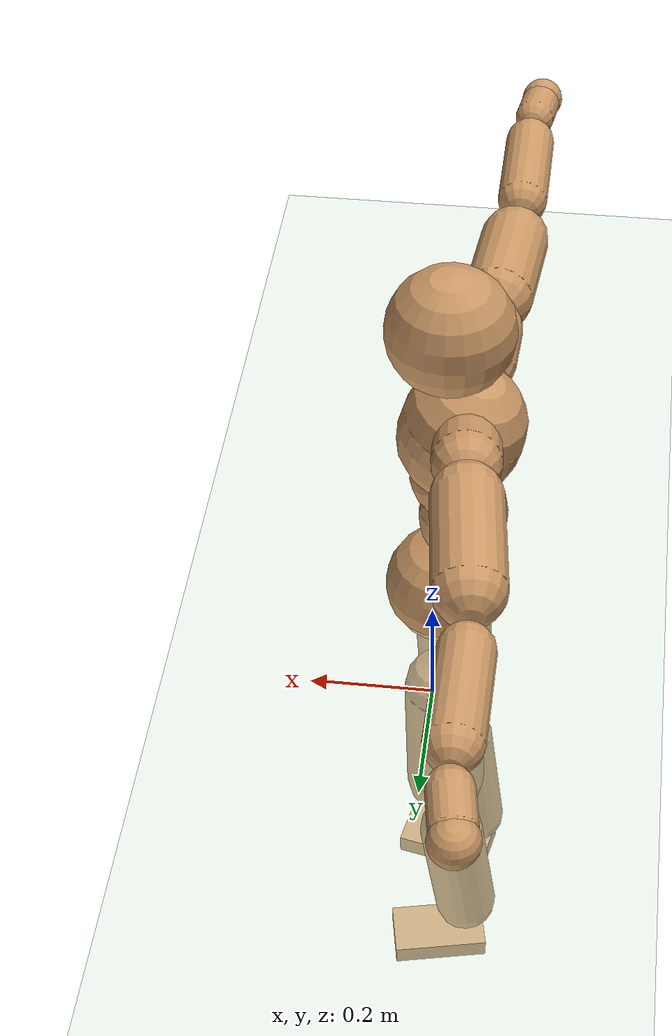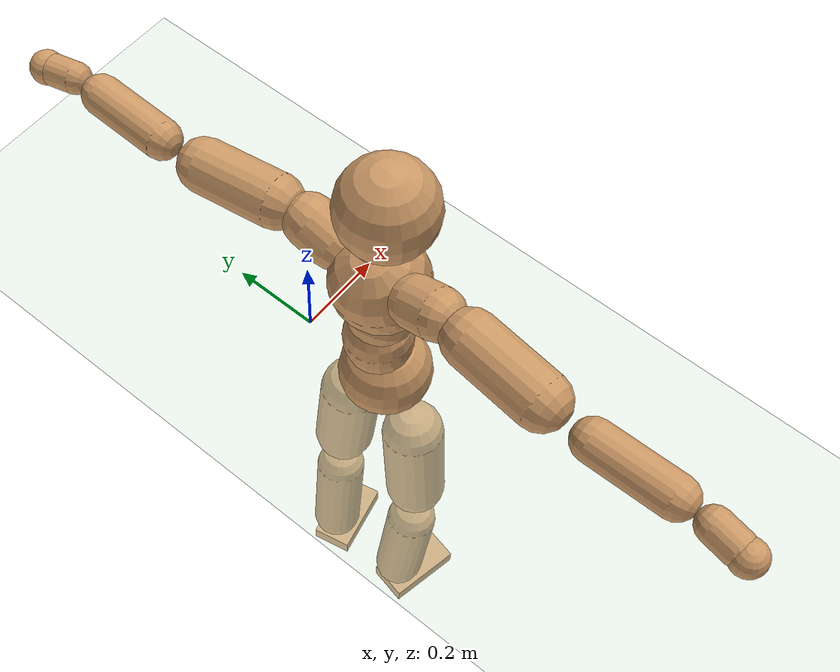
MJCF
<mujoco model="humanoid">
  <compiler coordinate="local"/>
  <default>
    <joint damping="0.0" armature="0.01" stiffness="0.0" limited="true"/>
    <geom conaffinity="1" condim="3" contype="7" margin="0.001" rgba="0.8 0.6 .4 1"/>
  </default>
  <asset>
    <texture type="skybox" builtin="gradient" rgb1=".4 .5 .6" rgb2="0 0 0" width="100" height="100"/>
    <texture builtin="flat" height="1278" mark="cross" markrgb="1 1 1" name="texgeom" random="0.01" rgb1="0.8 0.6 0.4" rgb2="0.8 0.6 0.4" type="cube" width="127"/>
    <texture builtin="checker" height="100" name="texplane" rgb1="0 0 0" rgb2="0.8 0.8 0.8" type="2d" width="100"/>
    <material name="MatPlane" reflectance="0.5" shininess="1" specular="1" texrepeat="60 60" texture="texplane"/>
    <material name="geom" texture="texgeom" texuniform="true"/>
  </asset>
  <worldbody>
    <light cutoff="100" diffuse="1 1 1" dir="-0 0 -1.3" directional="true" exponent="1" pos="0 0 1.3" specular=".1 .1 .1"/>
    <geom conaffinity="1" condim="3" name="floor" pos="0 0 0" rgba="0.8 0.9 0.8 1" size="100 100 .2" type="plane" material="MatPlane"/>
    <body name="Pelvis" pos="0.0008 -0.2077 0.0345">
      <freejoint name="Pelvis"/>
      <geom type="sphere" contype="1" conaffinity="1" density="500" size="0.1005" pos="0.0000 0.0000 0.0000" name="Pelvis"/>
      <body name="L_Hip" pos="-0.0067 0.0799 -0.0927">
        <joint name="L_Hip_x" type="hinge" pos="0 0 0" axis="1 0 0" stiffness="800" damping="80" armature="0.02" range="-180.0000 180.0000"/>
        <joint name="L_Hip_y" type="hinge" pos="0 0 0" axis="0 1 0" stiffness="800" damping="80" armature="0.02" range="-180.0000 180.0000"/>
        <joint name="L_Hip_z" type="hinge" pos="0 0 0" axis="0 0 1" stiffness="800" damping="80" armature="0.02" range="-180.0000 180.0000"/>
        <geom type="capsule" contype="1" conaffinity="1" density="500" fromto="-0.0017 0.0066 -0.0782 -0.0069 0.0264 -0.3129" size="0.0688" name="L_Hip"/>
        <body name="L_Knee" pos="-0.0086 0.033 -0.3911">
          <joint name="L_Knee_x" type="hinge" pos="0 0 0" axis="1 0 0" stiffness="800" damping="80" armature="0.02" range="-180.0000 180.0000"/>
          <joint name="L_Knee_y" type="hinge" pos="0 0 0" axis="0 1 0" stiffness="800" damping="80" armature="0.02" range="-180.0000 180.0000"/>
          <joint name="L_Knee_z" type="hinge" pos="0 0 0" axis="0 0 1" stiffness="800" damping="80" armature="0.02" range="-180.0000 180.0000"/>
          <geom type="capsule" contype="1" conaffinity="1" density="500" fromto="-0.0098 -0.0025 -0.0837 -0.0392 -0.0098 -0.3346" size="0.0583" name="L_Knee"/>
          <body name="L_Ankle" pos="-0.049 -0.0123 -0.4183">
            <joint name="L_Ankle_x" type="hinge" pos="0 0 0" axis="1 0 0" stiffness="800" damping="80" armature="0.02" range="-180.0000 180.0000"/>
            <joint name="L_Ankle_y" type="hinge" pos="0 0 0" axis="0 1 0" stiffness="800" damping="80" armature="0.02" range="-180.0000 180.0000"/>
            <joint name="L_Ankle_z" type="hinge" pos="0 0 0" axis="0 0 1" stiffness="800" damping="80" armature="0.02" range="-180.0000 180.0000"/>
            <geom type="box" contype="1" conaffinity="1" density="500" pos="0.0614 0.0125 -0.0296" size="0.0892 0.0485 0.0213" quat="0.9949 0.0000 0.0000 0.1005" name="L_Ankle"/>
            <body name="L_Toe" pos="0.1228 0.0251 -0.0592">
              <joint name="L_Toe_x" type="hinge" pos="0 0 0" axis="1 0 0" stiffness="500" damping="50" armature="0.02" range="-180.0000 180.0000"/>
              <joint name="L_Toe_y" type="hinge" pos="0 0 0" axis="0 1 0" stiffness="500" damping="50" armature="0.02" range="-180.0000 180.0000"/>
              <joint name="L_Toe_z" type="hinge" pos="0 0 0" axis="0 0 1" stiffness="500" damping="50" armature="0.02" range="-180.0000 180.0000"/>
              <geom type="box" contype="1" conaffinity="1" density="500" pos="0.0000 0.0000 0.0288" size="0.001 0.0024 0.001" quat="0.9943 0.0000 0.0000 0.1066" name="L_Toe"/>
            </body>
          </body>
        </body>
      </body>
      <body name="R_Hip" pos="-0.0039 -0.0771 -0.0917">
        <joint name="R_Hip_x" type="hinge" pos="0 0 0" axis="1 0 0" stiffness="800" damping="80" armature="0.02" range="-180.0000 180.0000"/>
        <joint name="R_Hip_y" type="hinge" pos="0 0 0" axis="0 1 0" stiffness="800" damping="80" armature="0.02" range="-180.0000 180.0000"/>
        <joint name="R_Hip_z" type="hinge" pos="0 0 0" axis="0 0 1" stiffness="800" damping="80" armature="0.02" range="-180.0000 180.0000"/>
        <geom type="capsule" contype="1" conaffinity="1" density="500" fromto="-0.0023 -0.0079 -0.0795 -0.0090 -0.0316 -0.3179" size="0.068" name="R_Hip"/>
        <body name="R_Knee" pos="-0.0113 -0.0395 -0.3974">
          <joint name="R_Knee_x" type="hinge" pos="0 0 0" axis="1 0 0" stiffness="800" damping="80" armature="0.02" range="-180.0000 180.0000"/>
          <joint name="R_Knee_y" type="hinge" pos="0 0 0" axis="0 1 0" stiffness="800" damping="80" armature="0.02" range="-180.0000 180.0000"/>
          <joint name="R_Knee_z" type="hinge" pos="0 0 0" axis="0 0 1" stiffness="800" damping="80" armature="0.02" range="-180.0000 180.0000"/>
          <geom type="capsule" contype="1" conaffinity="1" density="500" fromto="-0.0095 0.0029 -0.0836 -0.0382 0.0117 -0.3346" size="0.0584" name="R_Knee"/>
          <body name="R_Ankle" pos="-0.0477 0.0147 -0.4182">
            <joint name="R_Ankle_x" type="hinge" pos="0 0 0" axis="1 0 0" stiffness="800" damping="80" armature="0.02" range="-180.0000 180.0000"/>
            <joint name="R_Ankle_y" type="hinge" pos="0 0 0" axis="0 1 0" stiffness="800" damping="80" armature="0.02" range="-180.0000 180.0000"/>
            <joint name="R_Ankle_z" type="hinge" pos="0 0 0" axis="0 0 1" stiffness="800" damping="80" armature="0.02" range="-180.0000 180.0000"/>
            <geom type="box" contype="1" conaffinity="1" density="500" pos="0.0635 -0.0133 -0.0252" size="0.0895 0.0485 0.0214" quat="0.9947 0.0000 0.0000 -0.1032" name="R_Ankle"/>
            <body name="R_Toe" pos="0.1269 -0.0266 -0.0504">
              <joint name="R_Toe_x" type="hinge" pos="0 0 0" axis="1 0 0" stiffness="500" damping="50" armature="0.02" range="-180.0000 180.0000"/>
              <joint name="R_Toe_y" type="hinge" pos="0 0 0" axis="0 1 0" stiffness="500" damping="50" armature="0.02" range="-180.0000 180.0000"/>
              <joint name="R_Toe_z" type="hinge" pos="0 0 0" axis="0 0 1" stiffness="500" damping="50" armature="0.02" range="-180.0000 180.0000"/>
              <geom type="box" contype="1" conaffinity="1" density="500" pos="0.0000 0.0000 0.0270" size="0.0009 0.0024 0.0012" quat="0.9955 0.0000 0.0000 -0.0942" name="R_Toe"/>
            </body>
          </body>
        </body>
      </body>
      <body name="Torso" pos="-0.0261 -0.0025 0.1067">
        <joint name="Torso_x" type="hinge" pos="0 0 0" axis="1 0 0" stiffness="1000" damping="100" armature="0.02" range="-180.0000 180.0000"/>
        <joint name="Torso_y" type="hinge" pos="0 0 0" axis="0 1 0" stiffness="1000" damping="100" armature="0.02" range="-180.0000 180.0000"/>
        <joint name="Torso_z" type="hinge" pos="0 0 0" axis="0 0 1" stiffness="1000" damping="100" armature="0.02" range="-180.0000 180.0000"/>
        <geom type="capsule" contype="1" conaffinity="1" density="500" fromto="-0.0032 0.0013 0.0746 -0.0021 0.0008 0.0497" size="0.0721" name="Torso"/>
        <body name="Spine" pos="-0.0053 0.0021 0.1243">
          <joint name="Spine_x" type="hinge" pos="0 0 0" axis="1 0 0" stiffness="1000" damping="100" armature="0.02" range="-180.0000 180.0000"/>
          <joint name="Spine_y" type="hinge" pos="0 0 0" axis="0 1 0" stiffness="1000" damping="100" armature="0.02" range="-180.0000 180.0000"/>
          <joint name="Spine_z" type="hinge" pos="0 0 0" axis="0 0 1" stiffness="1000" damping="100" armature="0.02" range="-180.0000 180.0000"/>
          <geom type="capsule" contype="1" conaffinity="1" density="500" fromto="0.0178 0.0012 0.0290 0.0119 0.0008 0.0193" size="0.0723" name="Spine"/>
          <body name="Chest" pos="0.0297 0.002 0.0483">
            <joint name="Chest_x" type="hinge" pos="0 0 0" axis="1 0 0" stiffness="1000" damping="100" armature="0.02" range="-180.0000 180.0000"/>
            <joint name="Chest_y" type="hinge" pos="0 0 0" axis="0 1 0" stiffness="1000" damping="100" armature="0.02" range="-180.0000 180.0000"/>
            <joint name="Chest_z" type="hinge" pos="0 0 0" axis="0 0 1" stiffness="1000" damping="100" armature="0.02" range="-180.0000 180.0000"/>
            <geom type="capsule" contype="1" conaffinity="1" density="500" fromto="-0.0270 -0.0004 0.0930 -0.0180 -0.0003 0.0620" size="0.0986" name="Chest"/>
            <body name="Neck" pos="-0.0534 -0.0009 0.2186">
              <joint name="Neck_x" type="hinge" pos="0 0 0" axis="1 0 0" stiffness="500" damping="50" armature="0.02" range="-180.0000 180.0000"/>
              <joint name="Neck_y" type="hinge" pos="0 0 0" axis="0 1 0" stiffness="500" damping="50" armature="0.02" range="-180.0000 180.0000"/>
              <joint name="Neck_z" type="hinge" pos="0 0 0" axis="0 0 1" stiffness="500" damping="50" armature="0.02" range="-180.0000 180.0000"/>
              <geom type="capsule" contype="1" conaffinity="1" density="500" fromto="0.0099 0.0006 0.0120 0.0394 0.0026 0.0479" size="0.0418" name="Neck"/>
              <body name="Head" pos="0.0493 0.0032 0.0599">
                <joint name="Head_x" type="hinge" pos="0 0 0" axis="1 0 0" stiffness="500" damping="50" armature="0.02" range="-180.0000 180.0000"/>
                <joint name="Head_y" type="hinge" pos="0 0 0" axis="0 1 0" stiffness="500" damping="50" armature="0.02" range="-180.0000 180.0000"/>
                <joint name="Head_z" type="hinge" pos="0 0 0" axis="0 0 1" stiffness="500" damping="50" armature="0.02" range="-180.0000 180.0000"/>
                <geom type="sphere" contype="1" conaffinity="1" density="500" size="0.0998" pos="0.0000 0.0000 0.0000" name="Head"/>
              </body>
            </body>
            <body name="L_Thorax" pos="-0.0378 0.0787 0.1243">
              <joint name="L_Thorax_x" type="hinge" pos="0 0 0" axis="1 0 0" stiffness="500" damping="50" armature="0.02" range="-180.0000 180.0000"/>
              <joint name="L_Thorax_y" type="hinge" pos="0 0 0" axis="0 1 0" stiffness="500" damping="50" armature="0.02" range="-180.0000 180.0000"/>
              <joint name="L_Thorax_z" type="hinge" pos="0 0 0" axis="0 0 1" stiffness="500" damping="50" armature="0.02" range="-180.0000 180.0000"/>
              <geom type="capsule" contype="1" conaffinity="1" density="500" fromto="-0.0013 0.0179 0.0076 -0.0052 0.0715 0.0303" size="0.0533" name="L_Thorax"/>
              <body name="L_Shoulder" pos="-0.0065 0.0893 0.0379">
                <joint name="L_Shoulder_x" type="hinge" pos="0 0 0" axis="1 0 0" stiffness="500" damping="50" armature="0.02" range="-720.0000 720.0000"/>
                <joint name="L_Shoulder_y" type="hinge" pos="0 0 0" axis="0 1 0" stiffness="500" damping="50" armature="0.02" range="-720.0000 720.0000"/>
                <joint name="L_Shoulder_z" type="hinge" pos="0 0 0" axis="0 0 1" stiffness="500" damping="50" armature="0.02" range="-720.0000 720.0000"/>
                <geom type="capsule" contype="1" conaffinity="1" density="500" fromto="-0.0063 0.0549 -0.0035 -0.0252 0.2195 -0.0142" size="0.0552" name="L_Shoulder"/>
                <body name="L_Elbow" pos="-0.0315 0.2743 -0.0177">
                  <joint name="L_Elbow_x" type="hinge" pos="0 0 0" axis="1 0 0" stiffness="500" damping="50" armature="0.02" range="-720.0000 720.0000"/>
                  <joint name="L_Elbow_y" type="hinge" pos="0 0 0" axis="0 1 0" stiffness="500" damping="50" armature="0.02" range="-720.0000 720.0000"/>
                  <joint name="L_Elbow_z" type="hinge" pos="0 0 0" axis="0 0 1" stiffness="500" damping="50" armature="0.02" range="-720.0000 720.0000"/>
                  <geom type="capsule" contype="1" conaffinity="1" density="500" fromto="0.0005 0.0531 0.0024 0.0019 0.2124 0.0097" size="0.0417" name="L_Elbow"/>
                  <body name="L_Wrist" pos="0.0023 0.2655 0.0121">
                    <joint name="L_Wrist_x" type="hinge" pos="0 0 0" axis="1 0 0" stiffness="300" damping="30" armature="0.02" range="-180.0000 180.0000"/>
                    <joint name="L_Wrist_y" type="hinge" pos="0 0 0" axis="0 1 0" stiffness="300" damping="30" armature="0.02" range="-180.0000 180.0000"/>
                    <joint name="L_Wrist_z" type="hinge" pos="0 0 0" axis="0 0 1" stiffness="300" damping="30" armature="0.02" range="-180.0000 180.0000"/>
                    <geom type="capsule" contype="1" conaffinity="1" density="500" fromto="-0.0029 0.0176 -0.0022 -0.0117 0.0703 -0.0088" size="0.0328" name="L_Wrist"/>
                    <body name="L_Hand" pos="-0.0146 0.0879 -0.011">
                      <joint name="L_Hand_x" type="hinge" pos="0 0 0" axis="1 0 0" stiffness="300" damping="30" armature="0.02" range="-180.0000 180.0000"/>
                      <joint name="L_Hand_y" type="hinge" pos="0 0 0" axis="0 1 0" stiffness="300" damping="30" armature="0.02" range="-180.0000 180.0000"/>
                      <joint name="L_Hand_z" type="hinge" pos="0 0 0" axis="0 0 1" stiffness="300" damping="30" armature="0.02" range="-180.0000 180.0000"/>
                      <geom type="sphere" contype="1" conaffinity="1" density="500" size="0.0353" pos="0.0000 0.0000 0.0000" name="L_Hand"/>
                    </body>
                  </body>
                </body>
              </body>
            </body>
            <body name="R_Thorax" pos="-0.0436 -0.0798 0.122">
              <joint name="R_Thorax_x" type="hinge" pos="0 0 0" axis="1 0 0" stiffness="500" damping="50" armature="0.02" range="-180.0000 180.0000"/>
              <joint name="R_Thorax_y" type="hinge" pos="0 0 0" axis="0 1 0" stiffness="500" damping="50" armature="0.02" range="-180.0000 180.0000"/>
              <joint name="R_Thorax_z" type="hinge" pos="0 0 0" axis="0 0 1" stiffness="500" damping="50" armature="0.02" range="-180.0000 180.0000"/>
              <geom type="capsule" contype="1" conaffinity="1" density="500" fromto="-0.0018 -0.0188 0.0078 -0.0073 -0.0753 0.0312" size="0.0523" name="R_Thorax"/>
              <body name="R_Shoulder" pos="-0.0091 -0.0941 0.039">
                <joint name="R_Shoulder_x" type="hinge" pos="0 0 0" axis="1 0 0" stiffness="500" damping="50" armature="0.02" range="-720.0000 720.0000"/>
                <joint name="R_Shoulder_y" type="hinge" pos="0 0 0" axis="0 1 0" stiffness="500" damping="50" armature="0.02" range="-720.0000 720.0000"/>
                <joint name="R_Shoulder_z" type="hinge" pos="0 0 0" axis="0 0 1" stiffness="500" damping="50" armature="0.02" range="-720.0000 720.0000"/>
                <geom type="capsule" contype="1" conaffinity="1" density="500" fromto="-0.0048 -0.0547 -0.0038 -0.0192 -0.2187 -0.0152" size="0.0566" name="R_Shoulder"/>
                <body name="R_Elbow" pos="-0.024 -0.2734 -0.019">
                  <joint name="R_Elbow_x" type="hinge" pos="0 0 0" axis="1 0 0" stiffness="500" damping="50" armature="0.02" range="-720.0000 720.0000"/>
                  <joint name="R_Elbow_y" type="hinge" pos="0 0 0" axis="0 1 0" stiffness="500" damping="50" armature="0.02" range="-720.0000 720.0000"/>
                  <joint name="R_Elbow_z" type="hinge" pos="0 0 0" axis="0 0 1" stiffness="500" damping="50" armature="0.02" range="-720.0000 720.0000"/>
                  <geom type="capsule" contype="1" conaffinity="1" density="500" fromto="-0.0004 -0.0546 0.0021 -0.0017 -0.2183 0.0083" size="0.0417" name="R_Elbow"/>
                  <body name="R_Wrist" pos="-0.0022 -0.2729 0.0104">
                    <joint name="R_Wrist_x" type="hinge" pos="0 0 0" axis="1 0 0" stiffness="300" damping="30" armature="0.02" range="-180.0000 180.0000"/>
                    <joint name="R_Wrist_y" type="hinge" pos="0 0 0" axis="0 1 0" stiffness="300" damping="30" armature="0.02" range="-180.0000 180.0000"/>
                    <joint name="R_Wrist_z" type="hinge" pos="0 0 0" axis="0 0 1" stiffness="300" damping="30" armature="0.02" range="-180.0000 180.0000"/>
                    <geom type="capsule" contype="1" conaffinity="1" density="500" fromto="-0.0024 -0.0179 -0.0016 -0.0095 -0.0714 -0.0066" size="0.0338" name="R_Wrist"/>
                    <body name="R_Hand" pos="-0.0119 -0.0893 -0.0082">
                      <joint name="R_Hand_x" type="hinge" pos="0 0 0" axis="1 0 0" stiffness="300" damping="30" armature="0.02" range="-180.0000 180.0000"/>
                      <joint name="R_Hand_y" type="hinge" pos="0 0 0" axis="0 1 0" stiffness="300" damping="30" armature="0.02" range="-180.0000 180.0000"/>
                      <joint name="R_Hand_z" type="hinge" pos="0 0 0" axis="0 0 1" stiffness="300" damping="30" armature="0.02" range="-180.0000 180.0000"/>
                      <geom type="sphere" contype="1" conaffinity="1" density="500" size="0.0357" pos="0.0000 0.0000 0.0000" name="R_Hand"/>
                    </body>
                  </body>
                </body>
              </body>
            </body>
          </body>
        </body>
      </body>
    </body>
  </worldbody>
  <actuator>
    <motor name="L_Hip_x" joint="L_Hip_x" gear="500"/>
    <motor name="L_Hip_y" joint="L_Hip_y" gear="500"/>
    <motor name="L_Hip_z" joint="L_Hip_z" gear="500"/>
    <motor name="L_Knee_x" joint="L_Knee_x" gear="500"/>
    <motor name="L_Knee_y" joint="L_Knee_y" gear="500"/>
    <motor name="L_Knee_z" joint="L_Knee_z" gear="500"/>
    <motor name="L_Ankle_x" joint="L_Ankle_x" gear="500"/>
    <motor name="L_Ankle_y" joint="L_Ankle_y" gear="500"/>
    <motor name="L_Ankle_z" joint="L_Ankle_z" gear="500"/>
    <motor name="L_Toe_x" joint="L_Toe_x" gear="500"/>
    <motor name="L_Toe_y" joint="L_Toe_y" gear="500"/>
    <motor name="L_Toe_z" joint="L_Toe_z" gear="500"/>
    <motor name="R_Hip_x" joint="R_Hip_x" gear="500"/>
    <motor name="R_Hip_y" joint="R_Hip_y" gear="500"/>
    <motor name="R_Hip_z" joint="R_Hip_z" gear="500"/>
    <motor name="R_Knee_x" joint="R_Knee_x" gear="500"/>
    <motor name="R_Knee_y" joint="R_Knee_y" gear="500"/>
    <motor name="R_Knee_z" joint="R_Knee_z" gear="500"/>
    <motor name="R_Ankle_x" joint="R_Ankle_x" gear="500"/>
    <motor name="R_Ankle_y" joint="R_Ankle_y" gear="500"/>
    <motor name="R_Ankle_z" joint="R_Ankle_z" gear="500"/>
    <motor name="R_Toe_x" joint="R_Toe_x" gear="500"/>
    <motor name="R_Toe_y" joint="R_Toe_y" gear="500"/>
    <motor name="R_Toe_z" joint="R_Toe_z" gear="500"/>
    <motor name="Torso_x" joint="Torso_x" gear="500"/>
    <motor name="Torso_y" joint="Torso_y" gear="500"/>
    <motor name="Torso_z" joint="Torso_z" gear="500"/>
    <motor name="Spine_x" joint="Spine_x" gear="500"/>
    <motor name="Spine_y" joint="Spine_y" gear="500"/>
    <motor name="Spine_z" joint="Spine_z" gear="500"/>
    <motor name="Chest_x" joint="Chest_x" gear="500"/>
    <motor name="Chest_y" joint="Chest_y" gear="500"/>
    <motor name="Chest_z" joint="Chest_z" gear="500"/>
    <motor name="Neck_x" joint="Neck_x" gear="500"/>
    <motor name="Neck_y" joint="Neck_y" gear="500"/>
    <motor name="Neck_z" joint="Neck_z" gear="500"/>
    <motor name="Head_x" joint="Head_x" gear="500"/>
    <motor name="Head_y" joint="Head_y" gear="500"/>
    <motor name="Head_z" joint="Head_z" gear="500"/>
    <motor name="L_Thorax_x" joint="L_Thorax_x" gear="500"/>
    <motor name="L_Thorax_y" joint="L_Thorax_y" gear="500"/>
    <motor name="L_Thorax_z" joint="L_Thorax_z" gear="500"/>
    <motor name="L_Shoulder_x" joint="L_Shoulder_x" gear="500"/>
    <motor name="L_Shoulder_y" joint="L_Shoulder_y" gear="500"/>
    <motor name="L_Shoulder_z" joint="L_Shoulder_z" gear="500"/>
    <motor name="L_Elbow_x" joint="L_Elbow_x" gear="500"/>
    <motor name="L_Elbow_y" joint="L_Elbow_y" gear="500"/>
    <motor name="L_Elbow_z" joint="L_Elbow_z" gear="500"/>
    <motor name="L_Wrist_x" joint="L_Wrist_x" gear="500"/>
    <motor name="L_Wrist_y" joint="L_Wrist_y" gear="500"/>
    <motor name="L_Wrist_z" joint="L_Wrist_z" gear="500"/>
    <motor name="L_Hand_x" joint="L_Hand_x" gear="500"/>
    <motor name="L_Hand_y" joint="L_Hand_y" gear="500"/>
    <motor name="L_Hand_z" joint="L_Hand_z" gear="500"/>
    <motor name="R_Thorax_x" joint="R_Thorax_x" gear="500"/>
    <motor name="R_Thorax_y" joint="R_Thorax_y" gear="500"/>
    <motor name="R_Thorax_z" joint="R_Thorax_z" gear="500"/>
    <motor name="R_Shoulder_x" joint="R_Shoulder_x" gear="500"/>
    <motor name="R_Shoulder_y" joint="R_Shoulder_y" gear="500"/>
    <motor name="R_Shoulder_z" joint="R_Shoulder_z" gear="500"/>
    <motor name="R_Elbow_x" joint="R_Elbow_x" gear="500"/>
    <motor name="R_Elbow_y" joint="R_Elbow_y" gear="500"/>
    <motor name="R_Elbow_z" joint="R_Elbow_z" gear="500"/>
    <motor name="R_Wrist_x" joint="R_Wrist_x" gear="500"/>
    <motor name="R_Wrist_y" joint="R_Wrist_y" gear="500"/>
    <motor name="R_Wrist_z" joint="R_Wrist_z" gear="500"/>
    <motor name="R_Hand_x" joint="R_Hand_x" gear="500"/>
    <motor name="R_Hand_y" joint="R_Hand_y" gear="500"/>
    <motor name="R_Hand_z" joint="R_Hand_z" gear="500"/>
  </actuator>
  <contact>
    <exclude body1="Torso" body2="Chest"/>
    <exclude body1="Head" body2="Chest"/>
    <exclude body1="R_Knee" body2="R_Toe"/>
    <exclude body1="R_Knee" body2="L_Ankle"/>
    <exclude body1="R_Knee" body2="L_Toe"/>
    <exclude body1="L_Knee" body2="L_Toe"/>
    <exclude body1="L_Knee" body2="R_Ankle"/>
    <exclude body1="L_Knee" body2="R_Toe"/>
    <exclude body1="L_Shoulder" body2="Chest"/>
    <exclude body1="R_Shoulder" body2="Chest"/>
  </contact>
  <sensor/>
  <size njmax="700" nconmax="700"/>
</mujoco>
